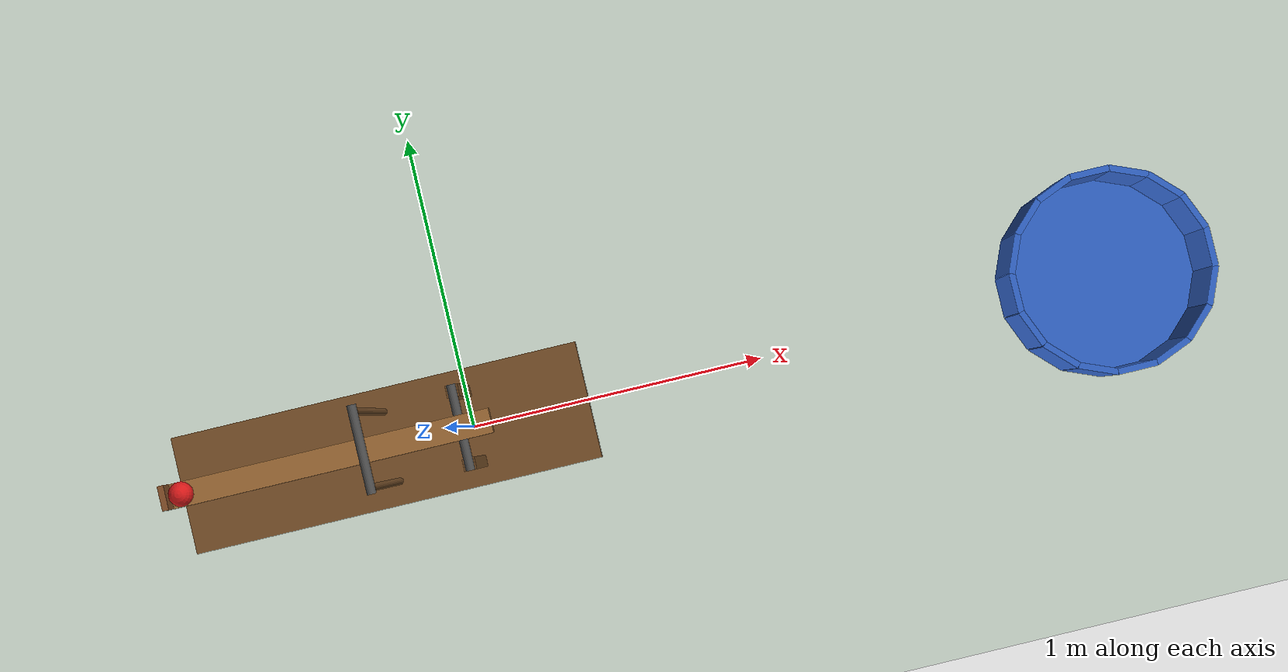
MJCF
<mujoco model="catapult_bucket">
  <compiler angle="degree"/>
  <option timestep="0.002" integrator="implicitfast" gravity="0 0 -9.81"/>

  <worldbody>
    <light name="sun" pos="1 -2 4" dir="-0.2 0.4 -1" directional="true"/>
    <geom name="floor" type="plane" size="10 10 0.1" rgba="0.8 0.85 0.8 1"/>

    <!-- catapult frame (visual only, does not collide) -->
    <geom name="catapult_base" type="box" pos="-0.3 0 0.03" size="0.7 0.2 0.03" rgba="0.45 0.3 0.15 1" contype="0" conaffinity="0"/>
    <geom name="catapult_post_left" type="box" pos="0 0.12 0.28" size="0.02 0.02 0.22" rgba="0.45 0.3 0.15 1" contype="0" conaffinity="0"/>
    <geom name="catapult_post_right" type="box" pos="0 -0.12 0.28" size="0.02 0.02 0.22" rgba="0.45 0.3 0.15 1" contype="0" conaffinity="0"/>
    <geom name="catapult_axle" type="cylinder" fromto="0 -0.14 0.5 0 0.14 0.5" size="0.015" rgba="0.3 0.3 0.3 1" contype="0" conaffinity="0"/>
    <geom name="catapult_stop_post_left" type="capsule" fromto="-0.28 0.12 0.06 -0.2839 0.12 0.7839" size="0.012" rgba="0.45 0.3 0.15 1" contype="0" conaffinity="0"/>
    <geom name="catapult_stop_post_right" type="capsule" fromto="-0.28 -0.12 0.06 -0.2839 -0.12 0.7839" size="0.012" rgba="0.45 0.3 0.15 1" contype="0" conaffinity="0"/>
    <geom name="catapult_stop_bar" type="cylinder" fromto="-0.2839 -0.14 0.7839 -0.2839 0.14 0.7839" size="0.015" rgba="0.3 0.3 0.3 1" contype="0" conaffinity="0"/>

    <!-- catapult arm: pivot at z=0.5, angle 0 = pointing along -x, rotates up to 40 deg -->
    <body name="catapult_arm" pos="0 0 0.5">
      <joint name="catapult_hinge" type="hinge" axis="0 1 0" range="0 40" limited="true" solreflimit="0.006 1"/>
      <geom name="catapult_beam" type="box" pos="-0.43 0 0" size="0.53 0.04 0.02" mass="0.3" solref="0.005 1" rgba="0.6 0.4 0.2 1"/>
      <geom name="catapult_cup_wall" type="box" pos="-0.95 0 0.06" size="0.01 0.04 0.04" mass="0.02" solref="0.005 1" rgba="0.5 0.3 0.15 1"/>
    </body>

    <!-- ball resting on the arm against the cup wall -->
    <body name="ball" pos="-0.9 0 0.56">
      <freejoint/>
      <geom name="ball" type="sphere" size="0.04" mass="0.1" solref="0.005 1" rgba="0.85 0.1 0.1 1"/>
    </body>

    <!-- stand under the bucket -->
    <geom name="stand" type="cylinder" pos="2.1 0 0.2" size="0.15 0.2" rgba="0.5 0.5 0.55 1"/>

    <!-- bucket: centre exactly 3 m from the ball's start -->
    <body name="bucket" pos="2.1 0 0.56">
      <geom name="bucket_bottom" type="cylinder" pos="0 0 -0.14" size="0.32 0.02" solref="0.005 1" rgba="0.2 0.4 0.8 1"/>
      <geom name="bucket_wall_00" type="box" pos="0.31 0 0" euler="0 0 0" size="0.01 0.062 0.16" solref="0.005 1" rgba="0.2 0.4 0.8 1"/>
      <geom name="bucket_wall_01" type="box" pos="0.2864 0.1186 0" euler="0 0 22.5" size="0.01 0.062 0.16" solref="0.005 1" rgba="0.2 0.4 0.8 1"/>
      <geom name="bucket_wall_02" type="box" pos="0.2192 0.2192 0" euler="0 0 45" size="0.01 0.062 0.16" solref="0.005 1" rgba="0.2 0.4 0.8 1"/>
      <geom name="bucket_wall_03" type="box" pos="0.1186 0.2864 0" euler="0 0 67.5" size="0.01 0.062 0.16" solref="0.005 1" rgba="0.2 0.4 0.8 1"/>
      <geom name="bucket_wall_04" type="box" pos="0 0.31 0" euler="0 0 90" size="0.01 0.062 0.16" solref="0.005 1" rgba="0.2 0.4 0.8 1"/>
      <geom name="bucket_wall_05" type="box" pos="-0.1186 0.2864 0" euler="0 0 112.5" size="0.01 0.062 0.16" solref="0.005 1" rgba="0.2 0.4 0.8 1"/>
      <geom name="bucket_wall_06" type="box" pos="-0.2192 0.2192 0" euler="0 0 135" size="0.01 0.062 0.16" solref="0.005 1" rgba="0.2 0.4 0.8 1"/>
      <geom name="bucket_wall_07" type="box" pos="-0.2864 0.1186 0" euler="0 0 157.5" size="0.01 0.062 0.16" solref="0.005 1" rgba="0.2 0.4 0.8 1"/>
      <geom name="bucket_wall_08" type="box" pos="-0.31 0 0" euler="0 0 180" size="0.01 0.062 0.16" solref="0.005 1" rgba="0.2 0.4 0.8 1"/>
      <geom name="bucket_wall_09" type="box" pos="-0.2864 -0.1186 0" euler="0 0 202.5" size="0.01 0.062 0.16" solref="0.005 1" rgba="0.2 0.4 0.8 1"/>
      <geom name="bucket_wall_10" type="box" pos="-0.2192 -0.2192 0" euler="0 0 225" size="0.01 0.062 0.16" solref="0.005 1" rgba="0.2 0.4 0.8 1"/>
      <geom name="bucket_wall_11" type="box" pos="-0.1186 -0.2864 0" euler="0 0 247.5" size="0.01 0.062 0.16" solref="0.005 1" rgba="0.2 0.4 0.8 1"/>
      <geom name="bucket_wall_12" type="box" pos="0 -0.31 0" euler="0 0 270" size="0.01 0.062 0.16" solref="0.005 1" rgba="0.2 0.4 0.8 1"/>
      <geom name="bucket_wall_13" type="box" pos="0.1186 -0.2864 0" euler="0 0 292.5" size="0.01 0.062 0.16" solref="0.005 1" rgba="0.2 0.4 0.8 1"/>
      <geom name="bucket_wall_14" type="box" pos="0.2192 -0.2192 0" euler="0 0 315" size="0.01 0.062 0.16" solref="0.005 1" rgba="0.2 0.4 0.8 1"/>
      <geom name="bucket_wall_15" type="box" pos="0.2864 -0.1186 0" euler="0 0 337.5" size="0.01 0.062 0.16" solref="0.005 1" rgba="0.2 0.4 0.8 1"/>
    </body>
  </worldbody>

  <contact>
    <!-- ball sits frictionlessly in the cup so it cannot spin up or be dragged by the cup wall at release -->
    <exclude name="no_default_arm_ball" body1="catapult_arm" body2="ball"/>
    <pair name="ball_on_beam" geom1="ball" geom2="catapult_beam" condim="1" solref="0.005 1"/>
    <pair name="ball_on_cup_wall" geom1="ball" geom2="catapult_cup_wall" condim="1" solref="0.005 1"/>
  </contact>

  <actuator>
    <!-- velocity servo with a filtered (smoothly ramping) target: torque = 100*(act - qvel), act -> ctrl with tau 0.02 s -->
    <general name="catapult_motor" joint="catapult_hinge" dyntype="filter" dynprm="0.02" gaintype="fixed" gainprm="100" biastype="affine" biasprm="0 0 -100" ctrlrange="0 10" ctrllimited="true"/>
  </actuator>

  <keyframe>
    <key name="start" qpos="0 -0.9 0 0.56 1 0 0 0" qvel="0 0 0 0 0 0 0" act="0" ctrl="5.233"/>
  </keyframe>
</mujoco>
